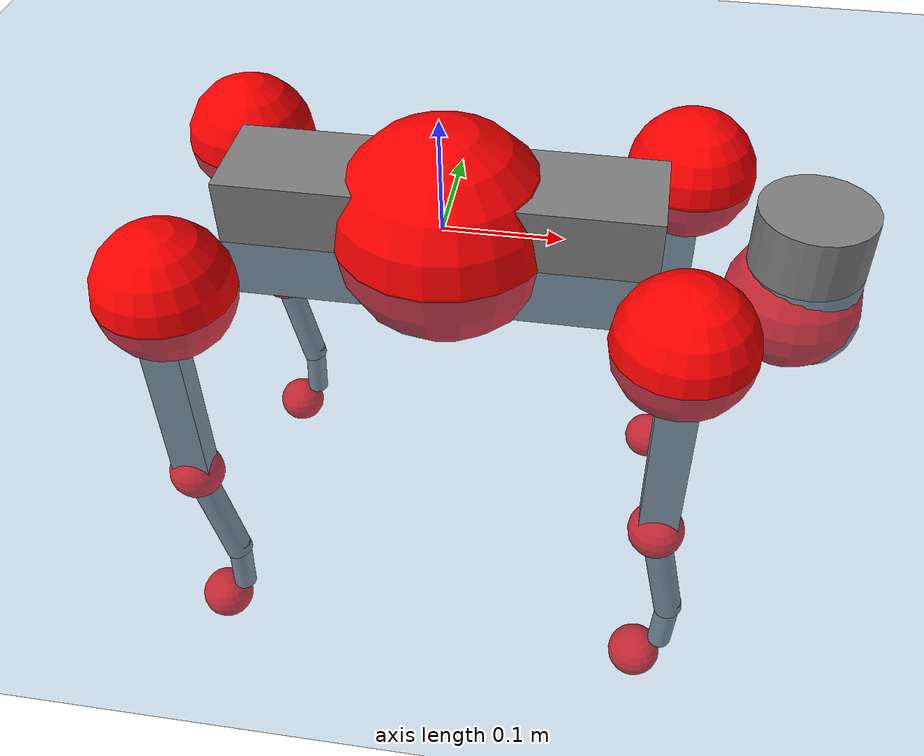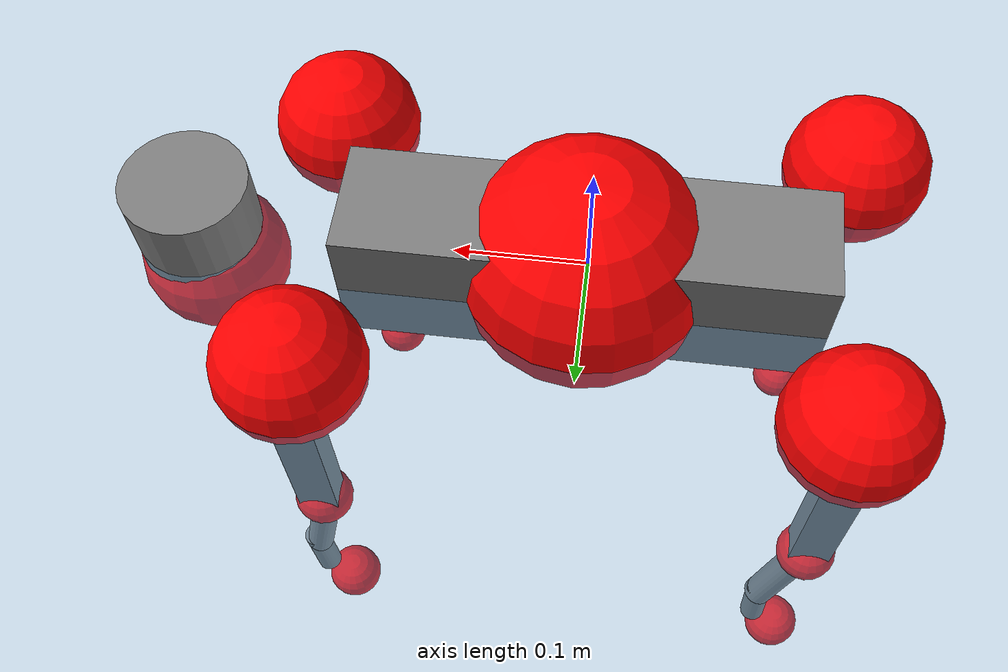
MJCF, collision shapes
<mujoco model="go2">
  <compiler angle="radian" assetdir="assets" balanceinertia="true" inertiafromgeom="false"/>

  <option timestep="0.005" density="1.2" viscosity="2e-05"/>

  <size nkey="1"/>

  <visual>
    <quality shadowsize="8192"/>
    <map shadowclip="0.5"/>
  </visual>

  <default>
    <default class="/">
      <geom contype="0" conaffinity="0" group="1" solref="-1000 -80"/>
      <site size="0.01 0.005 0.005" group="5"/>
      <general forcelimited="true" biastype="affine" gainprm="20" biasprm="0 -20 -0.5"/>
      <default class="go2">
        <joint armature="0.01" damping="0.01" frictionloss="0.2"/>
        <geom condim="1" margin="0.001"/>
        <default class="visual">
          <geom type="mesh" group="2"/>
        </default>
        <default class="collision">
          <geom group="3"/>
          <default class="foot">
            <geom size="0.022 0 0" condim="6" priority="1" friction="0.8 0.02 0.01" solimp="0.015 1 0.022"/>
          </default>
        </default>
        <default class="reward_collision_sphere">
          <geom group="5" rgba="1 0 0 1"/>
        </default>
      </default>
    </default>
  </default>

  <asset>
    <texture type="skybox" colorspace="auto" name="//unnamed_texture_0" builtin="gradient" rgb1="0.95 0.95 0.95" rgb2="0.95 0.95 0.95" width="100" height="600"/>
    <texture type="2d" colorspace="auto" name="texplane" builtin="checker" rgb1="0.345 0.575 0.748" rgb2="0.345 0.575 0.748" markrgb="1 1 1" width="512" height="512"/>
    <material name="MatPlane" class="/" texture="texplane" texuniform="true" texrepeat="2 2" specular="0.9"/>
    <material name="metal" class="/" rgba="0.9 0.95 0.95 1"/>
    <material name="black" class="/" rgba="0 0 0 1"/>
    <material name="white" class="/"/>
    <material name="gray" class="/" rgba="0.671705 0.692426 0.77427 1"/>
    <mesh name="base_0" class="/" file="base_0.obj"/>
    <mesh name="base_1" class="/" file="base_1.obj"/>
    <mesh name="base_2" class="/" file="base_2.obj"/>
    <mesh name="base_3" class="/" file="base_3.obj"/>
    <mesh name="base_4" class="/" file="base_4.obj"/>
    <mesh name="hip_0" class="/" file="hip_0.obj"/>
    <mesh name="hip_1" class="/" file="hip_1.obj"/>
    <mesh name="thigh_0" class="/" file="thigh_0.obj"/>
    <mesh name="thigh_1" class="/" file="thigh_1.obj"/>
    <mesh name="thigh_mirror_0" class="/" file="thigh_mirror_0.obj"/>
    <mesh name="thigh_mirror_1" class="/" file="thigh_mirror_1.obj"/>
    <mesh name="calf_0" class="/" file="calf_0.obj"/>
    <mesh name="calf_1" class="/" file="calf_1.obj"/>
    <mesh name="calf_mirror_0" class="/" file="calf_mirror_0.obj"/>
    <mesh name="calf_mirror_1" class="/" file="calf_mirror_1.obj"/>
    <mesh name="foot" class="/" file="foot.obj"/>
  </asset>

  <worldbody>
    <geom name="floor" class="/" size="100 100 0.125" type="plane" group="0" material="MatPlane"/>
    <light name="toplight_shadow" class="/" pos="0 0 5" dir="0.0990148 0.0990148 -0.990148" type="directional" ambient="0.04 0.04 0.04" diffuse="0.55 0.55 0.55" specular="0.12 0.12 0.12"/>
    <light name="toplight_fill" class="/" pos="0 0 5" dir="0.0990148 0.0990148 -0.990148" type="directional" castshadow="false" ambient="0.04 0.04 0.04" diffuse="0.3 0.3 0.3" specular="0.08 0.08 0.08"/>
    <body name="trunk" childclass="go2" pos="0.0021052 -0.000317811 0.000862991" quat="1 -0.000104442 0.000362366 -0.00076023">
      <inertial pos="0.0194187 -0.00105785 -0.00518316" quat="-0.000248782 0.713154 -0.00158592 0.701006" mass="5.50702" diaginertia="0.115884 0.0755249 0.0104602"/>
      <joint name="//unnamed_joint_0" type="free" armature="0" damping="0" frictionloss="0"/>
      <geom name="//unnamed_geom_1" class="visual" material="black" mesh="base_0"/>
      <geom name="//unnamed_geom_2" class="visual" material="black" mesh="base_1"/>
      <geom name="//unnamed_geom_3" class="visual" material="black" mesh="base_2"/>
      <geom name="//unnamed_geom_4" class="visual" material="white" mesh="base_3"/>
      <geom name="//unnamed_geom_5" class="visual" material="gray" mesh="base_4"/>
      <geom name="trunk_1" class="collision" size="0.176704 0.0439177 0.0535467" type="box"/>
      <geom name="trunk_2" class="collision" size="0.0469708 0.0422737" pos="0.290347 0 0.00848073" type="cylinder"/>
      <geom name="trunk_3" class="collision" size="0.0441525" pos="0.298497 0 -0.0508844"/>
      <geom name="//unnamed_geom_9" class="reward_collision_sphere" size="0.0939416"/>
      <geom name="//unnamed_geom_10" class="reward_collision_sphere" size="0.056365" pos="0.285253 0 -0.0381633"/>
      <site name="imu" pos="-0.0282228 -0.00292073 0.0435941" size="0.00939416"/>
      <camera name="track" pos="0 -1.90283 0" quat="0.707107 0.707107 0 0" mode="trackcom"/>
      <camera name="ego_camera" pos="0.317853 0 0.0381633" quat="-0.5 -0.5 0.5 0.5"/>
      <body name="FL_hip" pos="0.196625 0.0446181 0.00119799" quat="1 -0.000105453 -0.000515622 -0.000155817">
        <inertial pos="-0.00591481 0.00175346 -0.000640339" quat="0.497099 0.501362 0.504325 0.497177" mass="0.566562" diaginertia="0.000993095 0.000459244 0.000210124"/>
        <joint name="FL_hip_joint" pos="0 0 0" axis="0.999898 0.0142761 0.00069927" stiffness="0.00158035" range="-1.00903 1.03848" armature="0.00924938" damping="0.00276808" frictionloss="0.188563"/>
        <geom name="//unnamed_geom_11" class="visual" material="metal" mesh="hip_0"/>
        <geom name="//unnamed_geom_12" class="visual" material="gray" mesh="hip_1"/>
        <geom name="//unnamed_geom_13" class="collision" size="0.0432131 0.0187883" pos="0 0.0761131 0" quat="0.707107 0.707107 0 0" type="cylinder"/>
        <geom name="//unnamed_geom_14" class="reward_collision_sphere" size="0.056365" pos="0 0.066599 0"/>
        <body name="FL_thigh" pos="-0.00155927 0.0901191 0.00178353" quat="1 9.86941e-05 -0.000302185 -0.000360356">
          <inertial pos="-0.00374032 -0.0209957 -0.0291938" quat="0.829508 0.0846924 -0.0203654 0.551661" mass="0.947553" diaginertia="0.0064292 0.0045492 0.00039395"/>
          <joint name="FL_thigh_joint" pos="0 0 0" axis="-0.00863589 0.999949 0.00531721" range="-1.58435 3.49292" armature="0.00977961" damping="0.00249191" frictionloss="0.197036"/>
          <geom name="//unnamed_geom_15" class="visual" material="metal" mesh="thigh_0"/>
          <geom name="//unnamed_geom_16" class="visual" material="gray" mesh="thigh_1"/>
          <geom name="//unnamed_geom_17" class="collision" size="0.100048 0.0115078 0.0159701" pos="0 0 -0.0903198" quat="0.707107 0 0.707107 0" type="box"/>
          <body name="FL_calf" pos="-0.000287077 -0.00236687 -0.180533" quat="1 -9.93127e-05 2.02026e-06 -9.45941e-05">
            <inertial pos="0.00550951 -0.000686688 -0.119228" quat="0.713969 0.00306119 -0.00532211 0.70015" mass="0.20006" diaginertia="0.00168748 0.00117059 2.37073e-05"/>
            <joint name="FL_calf_joint" pos="0 0 0" axis="-0.00175477 0.999994 0.00286237" stiffness="0.00157681" range="-2.7583 -0.831017" armature="0.00908362" damping="0" frictionloss="0.181726"/>
            <geom name="//unnamed_geom_18" class="visual" material="gray" mesh="calf_0"/>
            <geom name="//unnamed_geom_19" class="visual" material="black" mesh="calf_1"/>
            <geom name="FL_calf0" class="collision" size="0.011273 0.056365" pos="0.00815009 0 -0.0508844" quat="0.994493 0 -0.104807 0" type="cylinder"/>
            <geom name="//unnamed_geom_21" class="collision" size="0.0103336 0.030531" pos="0.0203752 0 -0.125515" quat="0.999688 0 0.0249974 0" type="cylinder"/>
            <geom name="//unnamed_geom_22" class="visual" pos="0 0 -0.18064" quat="1 0 0 0" material="black" mesh="foot"/>
            <geom name="FL_foot" class="foot" size="0.0178663" pos="-0.00203752 0 -0.18064"/>
            <geom name="//unnamed_geom_24" class="reward_collision_sphere" size="0.0234854"/>
            <geom name="//unnamed_geom_25" class="reward_collision_sphere" size="0.0234854" pos="-0.00203752 0 -0.18064"/>
            <site name="FL_foot" class="foot" pos="-0.00203752 0 -0.18064" size="0.00939416"/>
          </body>
        </body>
      </body>
      <body name="FR_hip" pos="0.197997 -0.0445777 -0.00162398" quat="1 0.000243169 4.91429e-05 0.000189177">
        <inertial pos="-0.00585762 -0.00315176 -0.000520771" quat="0.495178 0.503429 0.502914 0.498433" mass="0.559059" diaginertia="0.000969522 0.000467827 0.000212074"/>
        <joint name="FR_hip_joint" pos="0 0 0" axis="0.999999 0.000882653 0.000757733" stiffness="0.00594774" range="-1.06903 1.04815" armature="0.00905512" damping="0.0182588" frictionloss="0.177046"/>
        <geom name="//unnamed_geom_26" class="visual" pos="0 9.00267e-10 3.86143e-08" quat="4.63268e-05 1 0 0" material="metal" mesh="hip_0"/>
        <geom name="//unnamed_geom_27" class="visual" pos="0 1.45944e-09 -9.5508e-08" quat="4.63268e-05 1 0 0" material="gray" mesh="hip_1"/>
        <geom name="//unnamed_geom_28" class="collision" size="0.0432131 0.0187883" pos="0 -0.0761131 0" quat="0.707107 0.707107 0 0" type="cylinder"/>
        <geom name="//unnamed_geom_29" class="reward_collision_sphere" size="0.056365" pos="0 -0.066599 0"/>
        <body name="FR_thigh" pos="0.000264642 -0.093094 -0.00082526" quat="1 4.12594e-05 0.000106298 4.20415e-05">
          <inertial pos="-0.00413112 0.0207013 -0.0280662" quat="0.551673 -0.0202185 0.0847074 0.829502" mass="0.962587" diaginertia="0.00655643 0.00465274 0.000394697"/>
          <joint name="FR_thigh_joint" pos="0 0 0" axis="-0.00224785 -0.999996 0.00145548" range="-3.50046 1.58701" armature="0.00939528" damping="0.0153308" frictionloss="0.179246"/>
          <geom name="//unnamed_geom_30" class="visual" material="metal" mesh="thigh_mirror_0"/>
          <geom name="//unnamed_geom_31" class="visual" material="gray" mesh="thigh_mirror_1"/>
          <geom name="//unnamed_geom_32" class="collision" size="0.100048 0.0115078 0.0159701" pos="0 0 -0.0903198" quat="0.707107 0 0.707107 0" type="box"/>
          <body name="FR_calf" pos="-0.000755241 -0.00159399 -0.179422" quat="1 -1.87026e-05 -4.59721e-06 -1.71617e-05">
            <inertial pos="0.00618934 0.00102476 -0.120573" quat="0.700513 0.00117871 0.00356115 0.71363" mass="0.200532" diaginertia="0.00163997 0.0011436 2.32349e-05"/>
            <joint name="FR_calf_joint" pos="0 0 0" axis="0.00884862 -0.999958 -0.00235678" range="0.84203 2.72953" armature="0.00982167" damping="0.0149138" frictionloss="0.197353"/>
            <geom name="//unnamed_geom_33" class="visual" material="gray" mesh="calf_mirror_0"/>
            <geom name="//unnamed_geom_34" class="visual" material="black" mesh="calf_mirror_1"/>
            <geom name="FR_calf0" class="collision" size="0.0122124 0.056365" pos="0.0101876 0 -0.0508844" quat="0.995004 0 -0.0998334 0" type="cylinder"/>
            <geom name="//unnamed_geom_36" class="collision" size="0.0103336 0.030531" pos="0.0203752 0 -0.125515" quat="0.999688 0 0.0249974 0" type="cylinder"/>
            <geom name="//unnamed_geom_37" class="visual" pos="0 0 -0.18064" quat="1 0 0 0" material="black" mesh="foot"/>
            <geom name="FR_foot" class="foot" size="0.0232" pos="-0.00203752 0 -0.18064"/>
            <geom name="//unnamed_geom_39" class="reward_collision_sphere" size="0.0234854"/>
            <geom name="//unnamed_geom_40" class="reward_collision_sphere" size="0.0234854" pos="-0.00203752 0 -0.18064"/>
            <site name="FR_foot" class="foot" pos="-0.00203752 0 -0.18064" size="0.00939416"/>
          </body>
        </body>
      </body>
      <body name="RL_hip" pos="-0.197265 0.0445715 -0.000631847" quat="1 -0.000277284 -0.000184925 1.98203e-05">
        <inertial pos="0.00455308 0.00410248 -0.000254018" quat="0.50916 0.499083 0.501508 0.490063" mass="0.573442" diaginertia="0.000973925 0.000465486 0.000214274"/>
        <joint name="RL_hip_joint" pos="0 0 0" axis="-0.999818 0.0189341 0.00237918" stiffness="0.00226302" range="-1.05798 1.05247" armature="0.00895392" damping="0.0170961" frictionloss="0.201442"/>
        <geom name="//unnamed_geom_41" class="visual" pos="-1.48696e-09 0 -2.91479e-07" quat="4.63268e-05 0 1 0" material="metal" mesh="hip_0"/>
        <geom name="//unnamed_geom_42" class="visual" pos="-2.41054e-09 0 -2.585e-07" quat="4.63268e-05 0 1 0" material="gray" mesh="hip_1"/>
        <geom name="//unnamed_geom_43" class="collision" size="0.0432131 0.0187883" pos="0 0.0761131 0" quat="0.707107 0.707107 0 0" type="cylinder"/>
        <geom name="//unnamed_geom_44" class="reward_collision_sphere" size="0.056365" pos="0 0.066599 0"/>
        <body name="RL_thigh" pos="0.00012047 0.0889861 0.00112292" quat="1 -0.000163417 0.000210088 -1.66502e-05">
          <inertial pos="-0.00356761 -0.0211265 -0.0277274" quat="0.828953 0.0868482 -0.0244276 0.551995" mass="0.969731" diaginertia="0.00647216 0.00453145 0.000382363"/>
          <joint name="RL_thigh_joint" pos="0 0 0" axis="-0.000837291 0.999998 -0.00182235" stiffness="0.00481679" range="-0.519153 4.53599" armature="0.00964534" damping="0.0116671" frictionloss="0.18785"/>
          <geom name="//unnamed_geom_45" class="visual" material="metal" mesh="thigh_0"/>
          <geom name="//unnamed_geom_46" class="visual" material="gray" mesh="thigh_1"/>
          <geom name="//unnamed_geom_47" class="collision" size="0.100048 0.0115078 0.0159701" pos="0 0 -0.0903198" quat="0.707107 0 0.707107 0" type="box"/>
          <body name="RL_calf" pos="-7.81868e-05 -0.000822374 -0.18255" quat="1 1.47176e-05 1.04983e-05 1.98946e-05">
            <inertial pos="0.00735164 0.00157896 -0.119701" quat="0.711074 0.00180444 -0.00124926 0.703114" mass="0.197866" diaginertia="0.00162796 0.00112963 2.24539e-05"/>
            <joint name="RL_calf_joint" pos="0 0 0" axis="-0.00064269 1 8.27907e-05" range="-2.71949 -0.854042" armature="0.00916827" damping="0.00580317" frictionloss="0.206151"/>
            <geom name="//unnamed_geom_48" class="visual" material="gray" mesh="calf_0"/>
            <geom name="//unnamed_geom_49" class="visual" material="black" mesh="calf_1"/>
            <geom name="RL_calf0" class="collision" size="0.0122124 0.056365" pos="0.0101876 0 -0.0508844" quat="0.995004 0 -0.0998334 0" type="cylinder"/>
            <geom name="//unnamed_geom_51" class="collision" size="0.0103336 0.030531" pos="0.0203752 0 -0.125515" quat="0.999688 0 0.0249974 0" type="cylinder"/>
            <geom name="//unnamed_geom_52" class="visual" pos="0 0 -0.18064" quat="1 0 0 0" material="black" mesh="foot"/>
            <geom name="RL_foot" class="foot" size="0.0175491" pos="-0.00203752 0 -0.18064"/>
            <geom name="//unnamed_geom_54" class="reward_collision_sphere" size="0.0234854"/>
            <geom name="//unnamed_geom_55" class="reward_collision_sphere" size="0.0234854" pos="-0.00203752 0 -0.18064"/>
            <site name="RL_foot" class="foot" pos="-0.00203752 0 -0.18064" size="0.00939416"/>
          </body>
        </body>
      </body>
      <body name="RR_hip" pos="-0.19806 -0.0438611 2.8418e-05" quat="1 0.000599667 -0.000716098 0.000168156">
        <inertial pos="0.00727816 -0.00134174 -0.00189419" quat="0.499214 0.496261 0.499105 0.505376" mass="0.563437" diaginertia="0.000974908 0.000466375 0.000209535"/>
        <joint name="RR_hip_joint" pos="0 0 0" axis="-0.999938 0.0111763 5.36433e-05" range="-1.0669 1.05228" armature="0.00979814" damping="0.012135" frictionloss="0.188809"/>
        <geom name="//unnamed_geom_56" class="visual" pos="1.48463e-09 9.00267e-10 -3.30093e-07" quat="2.14617e-09 4.63268e-05 4.63268e-05 -1" material="metal" mesh="hip_0"/>
        <geom name="//unnamed_geom_57" class="visual" pos="2.41631e-09 1.45944e-09 -1.62992e-07" quat="2.14617e-09 4.63268e-05 4.63268e-05 -1" material="gray" mesh="hip_1"/>
        <geom name="//unnamed_geom_58" class="collision" size="0.0432131 0.0187883" pos="0 -0.0761131 0" quat="0.707107 0.707107 0 0" type="cylinder"/>
        <geom name="//unnamed_geom_59" class="reward_collision_sphere" size="0.056365" pos="0 -0.066599 0"/>
        <body name="RR_thigh" pos="0.000176784 -0.091106 -0.00283128" quat="1 -9.16105e-05 -8.77424e-05 9.29177e-06">
          <inertial pos="-0.00403336 0.0213565 -0.0278662" quat="0.552012 -0.0204296 0.084261 0.829317" mass="0.93972" diaginertia="0.00650199 0.00454768 0.000386088"/>
          <joint name="RR_thigh_joint" pos="0 0 0" axis="0.0106651 -0.999936 -0.00374974" range="-4.54073 0.550211" armature="0.00914933" damping="0.012704" frictionloss="0.188362"/>
          <geom name="//unnamed_geom_60" class="visual" material="metal" mesh="thigh_mirror_0"/>
          <geom name="//unnamed_geom_61" class="visual" material="gray" mesh="thigh_mirror_1"/>
          <geom name="//unnamed_geom_62" class="collision" size="0.100048 0.0115078 0.0159701" pos="0 0 -0.0903198" quat="0.707107 0 0.707107 0" type="box"/>
          <body name="RR_calf" pos="-0.000498282 0.000940588 -0.181901" quat="1 1.54279e-05 -1.31427e-05 3.29193e-05">
            <inertial pos="0.0058075 0.00105414 -0.119964" quat="0.704429 -0.00646994 -0.000277609 0.709745" mass="0.199185" diaginertia="0.00161417 0.00113594 2.35869e-05"/>
            <joint name="RR_calf_joint" pos="0 0 0" axis="-0.0113012 -0.99991 0.00725626" range="0.85063 2.72466" armature="0.00970316" damping="0.0170905" frictionloss="0.194132"/>
            <geom name="//unnamed_geom_63" class="visual" material="gray" mesh="calf_mirror_0"/>
            <geom name="//unnamed_geom_64" class="visual" material="black" mesh="calf_mirror_1"/>
            <geom name="RR_calf0" class="collision" size="0.0122124 0.056365" pos="0.0101876 0 -0.0508844" quat="0.995004 0 -0.0998334 0" type="cylinder"/>
            <geom name="//unnamed_geom_66" class="collision" size="0.0103336 0.030531" pos="0.0203752 0 -0.125515" quat="0.999688 0 0.0249974 0" type="cylinder"/>
            <geom name="//unnamed_geom_67" class="visual" pos="0 0 -0.18064" quat="1 0 0 0" material="black" mesh="foot"/>
            <geom name="RR_foot" class="foot" size="0.0219704" pos="-0.00203752 0 -0.18064"/>
            <geom name="//unnamed_geom_69" class="reward_collision_sphere" size="0.0234854"/>
            <geom name="//unnamed_geom_70" class="reward_collision_sphere" size="0.0234854" pos="-0.00203752 0 -0.18064"/>
            <site name="RR_foot" class="foot" pos="-0.00203752 0 -0.18064" size="0.00939416"/>
          </body>
        </body>
      </body>
    </body>
  </worldbody>

  <contact>
    <pair class="/" geom1="floor" geom2="FL_foot" name="//unnamed_contact_0"/>
    <pair class="/" geom1="floor" geom2="FR_foot" name="//unnamed_contact_1"/>
    <pair class="/" geom1="floor" geom2="RL_foot" name="//unnamed_contact_2"/>
    <pair class="/" geom1="floor" geom2="RR_foot" name="//unnamed_contact_3"/>
  </contact>

  <actuator>
    <general name="FL_hip" class="/" joint="FL_hip_joint" forcerange="-22.3355 22.3355" gainprm="18.699" biasprm="0 -18.699 -0.46425"/>
    <general name="FL_thigh" class="/" joint="FL_thigh_joint" forcerange="-22.828 22.828" gainprm="18.699" biasprm="0 -18.699 -0.46425"/>
    <general name="FL_calf" class="/" joint="FL_calf_joint" forcerange="-41.8139 41.8139" gainprm="18.699" biasprm="0 -18.699 -0.46425"/>
    <general name="FR_hip" class="/" joint="FR_hip_joint" forcerange="-22.3786 22.3786" gainprm="18.699" biasprm="0 -18.699 -0.46425"/>
    <general name="FR_thigh" class="/" joint="FR_thigh_joint" forcerange="-21.7197 21.7197" gainprm="18.699" biasprm="0 -18.699 -0.46425"/>
    <general name="FR_calf" class="/" joint="FR_calf_joint" forcerange="-43.0834 43.0834" gainprm="18.699" biasprm="0 -18.699 -0.46425"/>
    <general name="RL_hip" class="/" joint="RL_hip_joint" forcerange="-23.8539 23.8539" gainprm="18.699" biasprm="0 -18.699 -0.46425"/>
    <general name="RL_thigh" class="/" joint="RL_thigh_joint" forcerange="-23.0167 23.0167" gainprm="18.699" biasprm="0 -18.699 -0.46425"/>
    <general name="RL_calf" class="/" joint="RL_calf_joint" forcerange="-39.8649 39.8649" gainprm="18.699" biasprm="0 -18.699 -0.46425"/>
    <general name="RR_hip" class="/" joint="RR_hip_joint" forcerange="-22.1374 22.1374" gainprm="18.699" biasprm="0 -18.699 -0.46425"/>
    <general name="RR_thigh" class="/" joint="RR_thigh_joint" forcerange="-23.6832 23.6832" gainprm="18.699" biasprm="0 -18.699 -0.46425"/>
    <general name="RR_calf" class="/" joint="RR_calf_joint" forcerange="-42.5826 42.5826" gainprm="18.699" biasprm="0 -18.699 -0.46425"/>
  </actuator>

  <sensor>
    <gyro site="imu" name="imu_angular_velocity"/>
    <velocimeter site="imu" name="imu_linear_velocity"/>
    <framelinvel objtype="site" objname="FL_foot" name="FL_foot_global_linear_velocity"/>
    <framelinvel objtype="site" objname="FR_foot" name="FR_foot_global_linear_velocity"/>
    <framelinvel objtype="site" objname="RL_foot" name="RL_foot_global_linear_velocity"/>
    <framelinvel objtype="site" objname="RR_foot" name="RR_foot_global_linear_velocity"/>
  </sensor>

  <keyframe>
    <key name="home" qpos="0 0 0.325 1 0 0 0 0.1 0.8 -1.5 -0.1 -0.8 1.5 -0.1 0.8 -1.5 0.1 -0.8 1.5"/>
  </keyframe>
</mujoco>
